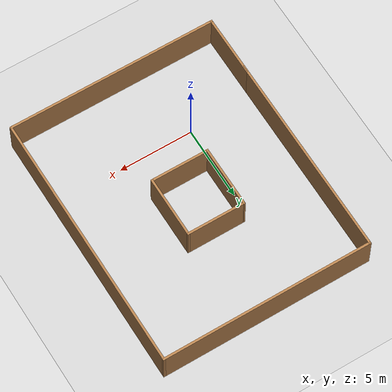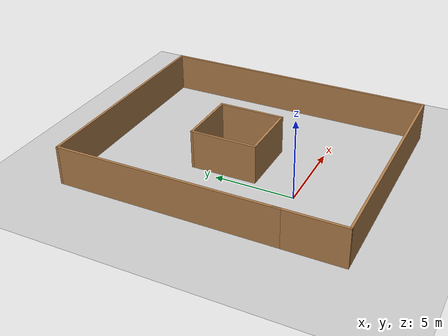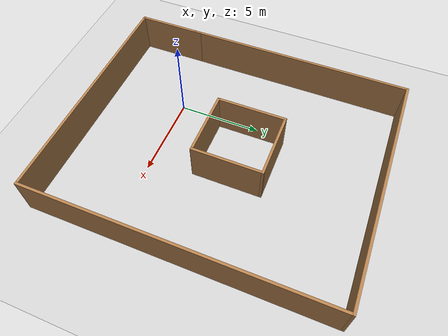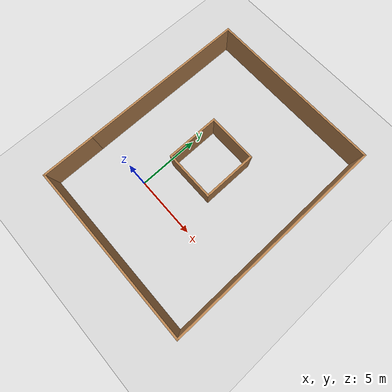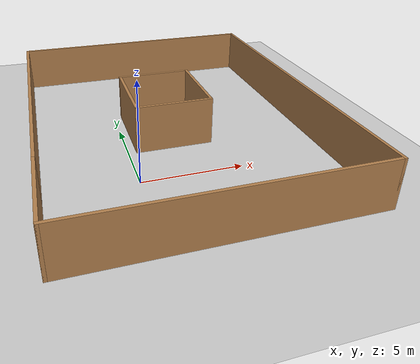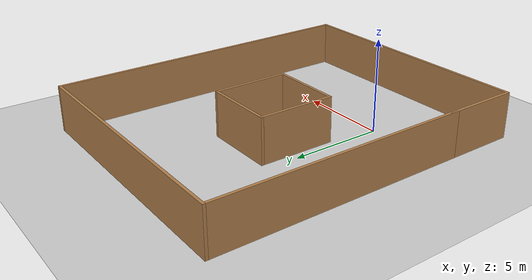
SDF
<sdf version="1.7">
 <world name="default">
  <light name="sun" type="directional">
   <pose>0 0 10 0 -0 0</pose>
   <diffuse>0.8 0.8 0.8 1</diffuse>
   <specular>0.2 0.2 0.2 1</specular>
   <attenuation>
    <range>1000</range>
    <constant>0.9</constant>
    <linear>0.01</linear>
    <quadratic>0.001</quadratic>
   </attenuation>
   <direction>-0.5 0.1 -0.9</direction>
   <spot><inner_angle>0</inner_angle><outer_angle>0</outer_angle><falloff>0</falloff></spot>
  </light>
  <model name="ground_plane">
   <static>1</static>
   <link name="link">
    <collision name="collision">
     <geometry><plane><normal>0 0 1</normal><size>100 100</size></plane></geometry>
     <surface>
      <contact><collide_bitmask>65535</collide_bitmask></contact>
      <friction><ode><mu>100</mu><mu2>50</mu2></ode></friction>
     </surface>
    </collision>
    <visual name="visual">
     <cast_shadows>0</cast_shadows>
     <geometry><plane><normal>0 0 1</normal><size>100 100</size></plane></geometry>
     <material>
      <script><uri>file://media/materials/scripts/gazebo.material</uri><name>Gazebo/Grey</name></script>
     </material>
    </visual>
   </link>
  </model>
  <gravity>0 0 -9.8</gravity>
  <magnetic_field>6e-06 2.3e-05 -4.2e-05</magnetic_field>
  <atmosphere type="adiabatic"/>
  <physics type="ode">
   <max_step_size>0.001</max_step_size>
   <real_time_factor>1</real_time_factor>
   <real_time_update_rate>1000</real_time_update_rate>
  </physics>
  <scene><ambient>0.4 0.4 0.4 1</ambient><background>0.7 0.7 0.7 1</background><shadows>1</shadows></scene>
  <spherical_coordinates>
   <surface_model>EARTH_WGS84</surface_model>
   <latitude_deg>0</latitude_deg>
   <longitude_deg>0</longitude_deg>
   <elevation>0</elevation>
   <heading_deg>0</heading_deg>
  </spherical_coordinates>
  <model name="WallMaze2">
   <pose>2.63 4.02 0 0 -0 0</pose>
   <link name="Wall_11">
    <collision name="Wall_11_Collision">
     <geometry><box><size>4 0.15 2.5</size></box></geometry>
     <pose>0 0 1.25 0 -0 0</pose>
    </collision>
    <visual name="Wall_11_Visual">
     <pose>0 0 1.25 0 -0 0</pose>
     <geometry><box><size>4 0.15 2.5</size></box></geometry>
     <material>
      <script><uri>file://media/materials/scripts/gazebo.material</uri><name>Gazebo/Wood</name></script>
      <ambient>1 1 1 1</ambient>
     </material>
     <meta><layer>0</layer></meta>
    </visual>
    <pose>-0.232399 -1.35495 0 0 -0 0</pose>
   </link>
   <link name="Wall_12">
    <collision name="Wall_12_Collision">
     <geometry><box><size>4.25 0.15 2.5</size></box></geometry>
     <pose>0 0 1.25 0 -0 0</pose>
    </collision>
    <visual name="Wall_12_Visual">
     <pose>0 0 1.25 0 -0 0</pose>
     <geometry><box><size>4.25 0.15 2.5</size></box></geometry>
     <material>
      <script><uri>file://media/materials/scripts/gazebo.material</uri><name>Gazebo/Wood</name></script>
      <ambient>1 1 1 1</ambient>
     </material>
     <meta><layer>0</layer></meta>
    </visual>
    <pose>1.6926 0.695053 0 0 -0 1.5708</pose>
   </link>
   <link name="Wall_13">
    <collision name="Wall_13_Collision">
     <geometry><box><size>4 0.15 2.5</size></box></geometry>
     <pose>0 0 1.25 0 -0 0</pose>
    </collision>
    <visual name="Wall_13_Visual">
     <pose>0 0 1.25 0 -0 0</pose>
     <geometry><box><size>4 0.15 2.5</size></box></geometry>
     <material>
      <script><uri>file://media/materials/scripts/gazebo.material</uri><name>Gazebo/Wood</name></script>
      <ambient>1 1 1 1</ambient>
     </material>
     <meta><layer>0</layer></meta>
    </visual>
    <pose>-0.232399 2.74505 0 0 -0 3.14159</pose>
   </link>
   <link name="Wall_3">
    <collision name="Wall_3_Collision">
     <geometry><box><size>4.25 0.15 2.5</size></box></geometry>
     <pose>0 0 1.25 0 -0 0</pose>
    </collision>
    <visual name="Wall_3_Visual">
     <pose>0 0 1.25 0 -0 0</pose>
     <geometry><box><size>4.25 0.15 2.5</size></box></geometry>
     <material>
      <script><uri>file://media/materials/scripts/gazebo.material</uri><name>Gazebo/Wood</name></script>
      <ambient>1 1 1 1</ambient>
     </material>
     <meta><layer>0</layer></meta>
    </visual>
    <pose>-7.05 -6.75 0 0 -0 -1.5708</pose>
   </link>
   <link name="Wall_4">
    <collision name="Wall_4_Collision">
     <geometry><box><size>14.25 0.15 2.5</size></box></geometry>
     <pose>0 0 1.25 0 -0 0</pose>
    </collision>
    <visual name="Wall_4_Visual">
     <pose>0 0 1.25 0 -0 0</pose>
     <geometry><box><size>14.25 0.15 2.5</size></box></geometry>
     <material>
      <script><uri>file://media/materials/scripts/gazebo.material</uri><name>Gazebo/Wood</name></script>
      <ambient>1 1 1 1</ambient>
     </material>
     <meta><layer>0</layer></meta>
    </visual>
    <pose>0 -8.8 0 0 -0 0</pose>
   </link>
   <link name="Wall_5">
    <collision name="Wall_5_Collision">
     <geometry><box><size>17.75 0.15 2.5</size></box></geometry>
     <pose>0 0 1.25 0 -0 0</pose>
    </collision>
    <visual name="Wall_5_Visual">
     <pose>0 0 1.25 0 -0 0</pose>
     <geometry><box><size>17.75 0.15 2.5</size></box></geometry>
     <material>
      <script><uri>file://media/materials/scripts/gazebo.material</uri><name>Gazebo/Wood</name></script>
      <ambient>1 1 1 1</ambient>
     </material>
     <meta><layer>0</layer></meta>
    </visual>
    <pose>7.05 0 0 0 -0 1.5708</pose>
   </link>
   <link name="Wall_6">
    <collision name="Wall_6_Collision">
     <geometry><box><size>14.25 0.15 2.5</size></box></geometry>
     <pose>0 0 1.25 0 -0 0</pose>
    </collision>
    <visual name="Wall_6_Visual">
     <pose>0 0 1.25 0 -0 0</pose>
     <geometry><box><size>14.25 0.15 2.5</size></box></geometry>
     <material>
      <script><uri>file://media/materials/scripts/gazebo.material</uri><name>Gazebo/Wood</name></script>
      <ambient>1 1 1 1</ambient>
     </material>
     <meta><layer>0</layer></meta>
    </visual>
    <pose>0 8.8 0 0 -0 3.14159</pose>
   </link>
   <link name="Wall_7">
    <collision name="Wall_7_Collision">
     <geometry><box><size>14 0.15 2.5</size></box></geometry>
     <pose>0 0 1.25 0 -0 0</pose>
    </collision>
    <visual name="Wall_7_Visual">
     <pose>0 0 1.25 0 -0 0</pose>
     <geometry><box><size>14 0.15 2.5</size></box></geometry>
     <material>
      <script><uri>file://media/materials/scripts/gazebo.material</uri><name>Gazebo/Wood</name></script>
      <ambient>1 1 1 1</ambient>
     </material>
     <meta><layer>0</layer></meta>
    </visual>
    <pose>-7.05 1.875 0 0 -0 -1.5708</pose>
   </link>
   <link name="Wall_9">
    <collision name="Wall_9_Collision">
     <geometry><box><size>4.25 0.15 2.5</size></box></geometry>
     <pose>0 0 1.25 0 -0 0</pose>
    </collision>
    <visual name="Wall_9_Visual">
     <pose>0 0 1.25 0 -0 0</pose>
     <geometry><box><size>4.25 0.15 2.5</size></box></geometry>
     <material>
      <script><uri>file://media/materials/scripts/gazebo.material</uri><name>Gazebo/Wood</name></script>
      <ambient>1 1 1 1</ambient>
     </material>
     <meta><layer>0</layer></meta>
    </visual>
    <pose>-2.1574 0.695053 0 0 -0 -1.5708</pose>
   </link>
   <static>1</static>
  </model>
 </world>
</sdf>
